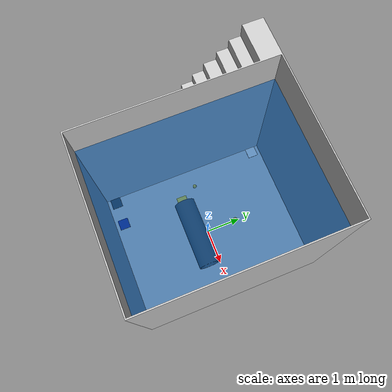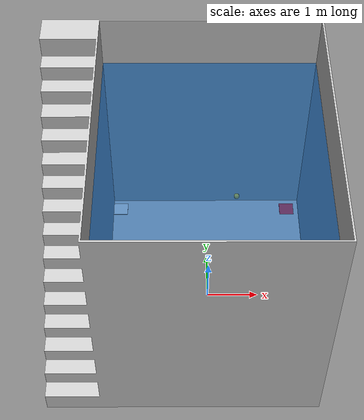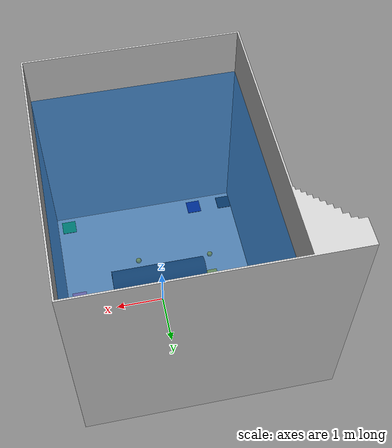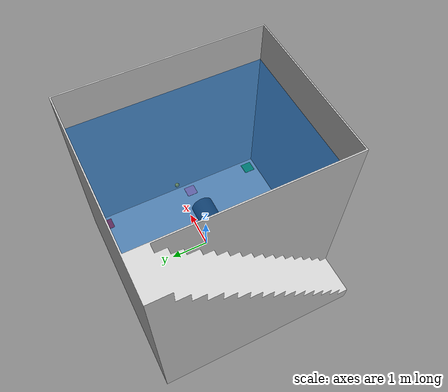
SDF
<sdf version="1.9">
 <world name="water_tank">
  <plugin filename="gz-sim-physics-system" name="gz::sim::systems::Physics"/>
  <plugin filename="gz-sim-scene-broadcaster-system" name="gz::sim::systems::SceneBroadcaster"/>
  <plugin filename="gz-sim-user-commands-system" name="gz::sim::systems::UserCommands"/>
  <plugin filename="gz-sim-sensors-system" name="gz::sim::systems::Sensors"/>
  <plugin filename="gz-sim-buoyancy-system" name="gz::sim::systems::Buoyancy">
   <graded_buoyancy>
    <fluid_density>1025</fluid_density>
    <density_change><above_depth>4</above_depth><density>1</density></density_change>
   </graded_buoyancy>
  </plugin>
  <light type="directional" name="sun1">
   <pose>50 0 150 0 0 0</pose>
   <diffuse>1 1 1 1</diffuse>
   <specular>.1 .1 .1 1</specular>
   <direction>0.3 0.3 -1</direction>
   <cast_shadows>false</cast_shadows>
  </light>
  <physics name="1ms" type="ignored">
   <max_step_size>0.005</max_step_size>
   <real_time_factor>1.0</real_time_factor>
  </physics>
  <model name="water_visual">
   <static>1</static>
   <link name="link">
    <visual name="vis">
     <pose>0 0 2.003 0 0 0</pose>
     <geometry><box><size>3.993 4.993 4</size></box></geometry>
     <material>
      <ambient>0 0.2 0.4 0.6</ambient>
      <diffuse>0 0.3 0.6 0.6</diffuse>
      <specular>0.1 0.2 0.3 1</specular>
     </material>
    </visual>
   </link>
  </model>
  <model name="plate">
   <static>true</static>
   <link name="p01">
    <pose>-1.85 2.25 0.03 0 0 0</pose>
    <visual name="vis">
     <geometry><box><size>0.3 0.3 0.02</size></box></geometry>
     <material>
      <ambient>0.8 0.8 0.8 1</ambient>
      <diffuse>0.95 0.95 0.95 1</diffuse>
      <specular>0.1 0.1 0.1 1</specular>
     </material>
    </visual>
    <collision name="col"><geometry><box><size>0.3 0.3 0.02</size></box></geometry></collision>
   </link>
   <link name="p02">
    <pose>1.75 2.25 0.03 0 0 0</pose>
    <visual name="vis">
     <geometry><box><size>0.3 0.3 0.02</size></box></geometry>
     <material>
      <ambient>0.5 0 0 1</ambient>
      <diffuse>0.9 0 0 1</diffuse>
      <specular>0.1 0.05 0.05 1</specular>
     </material>
    </visual>
    <collision name="col"><geometry><box><size>0.3 0.3 0.02</size></box></geometry></collision>
   </link>
   <link name="p03">
    <pose>1.75 -0.35 0.03 0 0 0</pose>
    <visual name="vis">
     <geometry><box><size>0.3 0.3 0.02</size></box></geometry>
     <material>
      <ambient>0.8 0.4 0.6 1</ambient>
      <diffuse>1.0 0.5 0.7 1</diffuse>
      <specular>0.1 0.05 0.08 1</specular>
     </material>
    </visual>
    <collision name="col"><geometry><box><size>0.3 0.3 0.02</size></box></geometry></collision>
   </link>
   <link name="p04">
    <pose>1.75 -2.25 0.03 0 0 0</pose>
    <visual name="vis">
     <geometry><box><size>0.3 0.3 0.02</size></box></geometry>
     <material>
      <ambient>0 0.4 0 1</ambient>
      <diffuse>0 0.7 0.2 1</diffuse>
      <specular>0.05 0.1 0.05 1</specular>
     </material>
    </visual>
    <collision name="col"><geometry><box><size>0.3 0.3 0.02</size></box></geometry></collision>
   </link>
   <link name="p05">
    <pose>-1.15 -0.35 0.03 0 0 0</pose>
    <visual name="vis">
     <geometry><box><size>0.3 0.3 0.02</size></box></geometry>
     <material>
      <ambient>0.7 0.6 0 1</ambient>
      <diffuse>1.0 0.85 0 1</diffuse>
      <specular>0.1 0.1 0.05 1</specular>
     </material>
    </visual>
    <collision name="col"><geometry><box><size>0.3 0.3 0.02</size></box></geometry></collision>
   </link>
   <link name="p06">
    <pose>-1.15 -2.25 0.03 0 0 0</pose>
    <visual name="vis">
     <geometry><box><size>0.3 0.3 0.02</size></box></geometry>
     <material>
      <ambient>0 0 0.3 1</ambient>
      <diffuse>0 0 0.5 1</diffuse>
      <specular>0.05 0.05 0.1 1</specular>
     </material>
    </visual>
    <collision name="col"><geometry><box><size>0.3 0.3 0.02</size></box></geometry></collision>
   </link>
   <link name="p07">
    <pose>-1.85 -2.25 0.03 0 0 0</pose>
    <visual name="vis">
     <geometry><box><size>0.3 0.3 0.02</size></box></geometry>
     <material>
      <ambient>0.05 0.05 0.05 1</ambient>
      <diffuse>0.1 0.1 0.1 1</diffuse>
      <specular>0.02 0.02 0.02 1</specular>
     </material>
    </visual>
    <collision name="col"><geometry><box><size>0.3 0.3 0.02</size></box></geometry></collision>
   </link>
  </model>
  <model name="marker1">
   <static>true</static>
   <pose>0.5 0.5 2.5 0 0 0</pose>
   <link name="marker1">
    <visual name="visual">
     <geometry><sphere><radius>0.05</radius></sphere></geometry>
     <material>
      <ambient>0.7 0.6 0 1</ambient>
      <diffuse>1.0 0.85 0 1</diffuse>
      <specular>0.1 0.1 0.05 1</specular>
     </material>
    </visual>
    <collision name="collision"><geometry><sphere><radius>0.05</radius></sphere></geometry></collision>
   </link>
  </model>
  <model name="marker2">
   <static>true</static>
   <pose>-1 0 1.5 0 0 0</pose>
   <link name="marker2">
    <visual name="visual">
     <geometry><sphere><radius>0.05</radius></sphere></geometry>
     <material>
      <ambient>0.7 0.6 0 1</ambient>
      <diffuse>1.0 0.85 0 1</diffuse>
      <specular>0.1 0.1 0.05 1</specular>
     </material>
    </visual>
    <collision name="collision"><geometry><sphere><radius>0.05</radius></sphere></geometry></collision>
   </link>
  </model>
  <include><uri>model://watertank</uri></include>
  <include><uri>model://pipe</uri><pose>0 -0.35 0.03 0 0 0</pose></include>
 </world>
</sdf>

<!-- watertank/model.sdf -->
<sdf version="1.9">
  <model name="watertank">
    <static>1</static>
    <link name="tank_link">
      <pose>0 0 0 0 0 0</pose>
      <inertial>
        <mass>1000</mass>
        <inertia>
          <ixx>1000</ixx>
          <ixy>0</ixy>
          <ixz>0</ixz>
          <iyy>1000</iyy>
          <iyz>0</iyz>
          <izz>1000</izz>
        </inertia>
      </inertial>
      <visual name="tank_visual">
        <geometry>
          <mesh>
            <uri>meshes/watertank.stl</uri>
            <scale>0.001 0.001 0.001</scale>
          </mesh>
        </geometry>
        <material>
          <ambient>0.8 0.8 0.8 1</ambient>
          <diffuse>0.8 0.8 0.8 1</diffuse>
          <specular>0.2 0.2 0.2 1</specular>
          <emissive>0 0 0 1</emissive>
        </material>
        <cast_shadows>true</cast_shadows>
      </visual>
      <collision name="tank_collision">
        <geometry>
          <mesh>
            <uri>meshes/watertank.stl</uri>
            <scale>0.001 0.001 0.001</scale>
          </mesh>
        </geometry>
        <surface>
          <contact>
            <ode>
              <kp>1e9</kp>
              <kd>1e3</kd>
              <max_vel>0.1</max_vel>
              <min_depth>0.001</min_depth>
            </ode>
          </contact>
        </surface>
      </collision>
    </link>
  </model>
</sdf>

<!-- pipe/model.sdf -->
<sdf version="1.9">
  <model name="pipe">
    <static>1</static>
    <link name="pipe_link">
      <pose>0 0 0 0 0 0</pose>
      <inertial>
        <mass>50</mass>
        <inertia>
          <ixx>10</ixx>
          <ixy>0</ixy>
          <ixz>0</ixz>
          <iyy>10</iyy>
          <iyz>0</iyz>
          <izz>10</izz>
        </inertia>
      </inertial>
      <visual name="pipe_visual">
        <geometry>
          <mesh>
            <uri>meshes/pipe.stl</uri>
            <scale>0.001 0.001 0.001</scale>
          </mesh>
        </geometry>
        <material>
          <ambient>0.2 0.2 0.2 1</ambient>
          <diffuse>0.2 0.2 0.2 1</diffuse>
        </material>
      </visual>
      <collision name="pipe_collision">
        <geometry>
          <mesh>
            <uri>meshes/pipe_col.stl</uri>
            <scale>0.001 0.001 0.001</scale>
          </mesh>
        </geometry>
      </collision>
    </link>
  </model>
</sdf>
